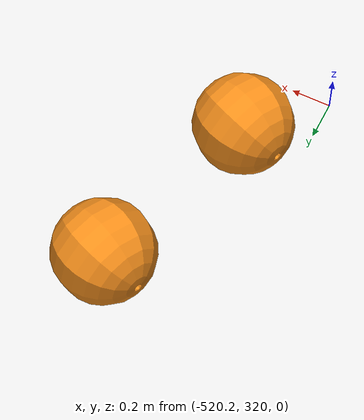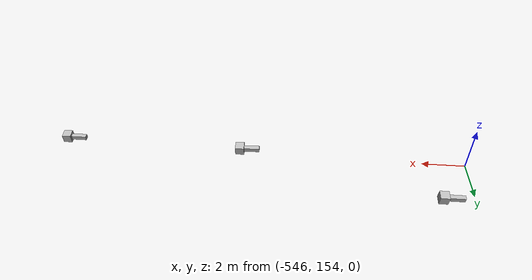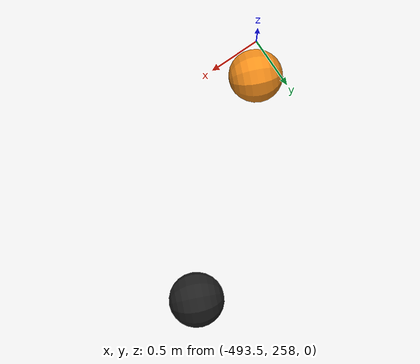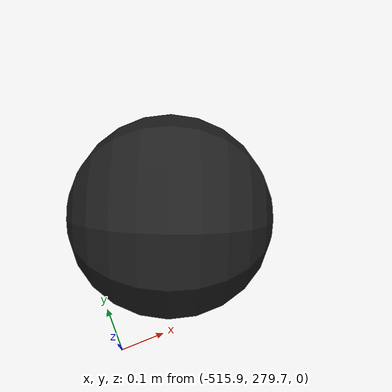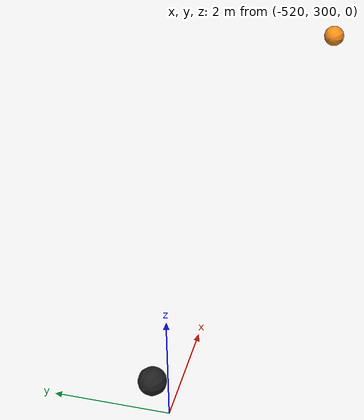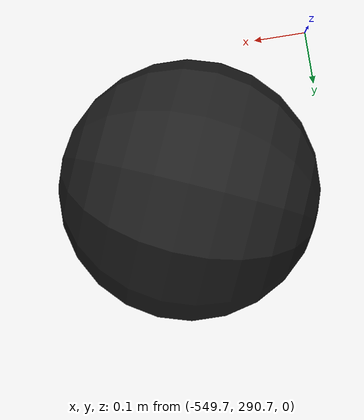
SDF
<sdf version="1.6">
 <world name="robotx_example_course">
  <spherical_coordinates>
   <surface_model>EARTH_WGS84</surface_model>
   <world_frame_orientation>ENU</world_frame_orientation>
   <latitude_deg>-33.724223</latitude_deg>
   <longitude_deg>150.679736</longitude_deg>
   <elevation>0.0</elevation>
   <heading_deg>0.0</heading_deg>
  </spherical_coordinates>
  <include><uri>model://sun</uri></include>
  <include>
   <name>post_0</name>
   <pose>-535.916809 154.362869 0.675884 -0.17182 0.030464 -0.005286</pose>
   <uri>model://post</uri>
  </include>
  <include>
   <name>post_1</name>
   <pose>-527.48999 153.854782 0.425844 -0.1365 0  0</pose>
   <uri>model://post</uri>
  </include>
  <include>
   <name>post_2</name>
   <pose>-544.832825 156.671951 0.499025 -0.162625 0 0</pose>
   <uri>model://post</uri>
  </include>
  <include>
   <name>blue_projectile</name>
   <pose>-545 60 0.03 0 0 0</pose>
   <uri>model://blue_projectile</uri>
  </include>
  <plugin filename="libusv_gazebo_wind_plugin.so" name="wind">
   <wind_obj>
    <name>wamv</name>
    <link_name>wamv/base_link</link_name>
    <coeff_vector>.5 .5 .33</coeff_vector>
   </wind_obj>
   <wind_direction>355</wind_direction>
   <wind_mean_velocity>8.0</wind_mean_velocity>
   <var_wind_gain_constants>5.0</var_wind_gain_constants>
   <var_wind_time_constants>2</var_wind_time_constants>
   <random_seed>19</random_seed>
   <update_rate>10</update_rate>
   <topic_wind_speed>/vrx/debug/wind/speed</topic_wind_speed>
   <topic_wind_direction>/vrx/debug/wind/direction</topic_wind_direction>
  </plugin>
  <scene>
   <sky><clouds><speed>12</speed></clouds></sky>
   <grid>0</grid>
   <origin_visual>0</origin_visual>
   <ambient>0.3 0.3 0.3 1</ambient>
  </scene>
  <include>
   <name>gymkhana_obstacle_course</name>
   <uri>model://obstacle_course2</uri>
   <pose>-530 290 0 0 0 1.17</pose>
  </include>
  <plugin filename="libgymkhana_vrx_scoring_plugin.so" name="gymkhana_scoring_plugin">
   <vehicle>wamv</vehicle>
   <task_name>gymkhana</task_name>
   <task_info_topic>/vrx/task/info</task_info_topic>
   <contact_debug_topic>/vrx/debug/contact</contact_debug_topic>
   <initial_state_duration>10</initial_state_duration>
   <ready_state_duration>10</ready_state_duration>
   <running_state_duration>300</running_state_duration>
   <per_plugin_exit_on_completion>true</per_plugin_exit_on_completion>
   <obstacle_penalty>1</obstacle_penalty>
   <set_position_topic_name>/wamv/sensors/pingers/pinger/set_pinger_position</set_position_topic_name>
   <pinger_position>-533 293 0</pinger_position>
  </plugin>
  <plugin filename="libnavigation_scoring_plugin.so" name="navigation_scoring_plugin">
   <vehicle>wamv</vehicle>
   <task_name>gymkhana_channel</task_name>
   <task_info_topic>/vrx/gymkhana_channel/task/info</task_info_topic>
   <contact_debug_topic>/vrx/gymkhana_channel/debug/contact</contact_debug_topic>
   <per_plugin_exit_on_completion>false</per_plugin_exit_on_completion>
   <initial_state_duration>10</initial_state_duration>
   <ready_state_duration>10</ready_state_duration>
   <running_state_duration>300</running_state_duration>
   <collision_buffer>10</collision_buffer>
   <release_joints>
    <joint><name>wamv_external_pivot_joint</name></joint>
    <joint><name>wamv_external_riser</name></joint>
   </release_joints>
   <course_name>gymkhana_navigation_course</course_name>
   <obstacle_penalty>10.0</obstacle_penalty>
   <gates>
    <gate><left_marker>red_bound_0</left_marker><right_marker>green_bound_0</right_marker></gate>
    <gate><left_marker>red_bound_1</left_marker><right_marker>green_bound_1</right_marker></gate>
    <gate><left_marker>red_bound_2</left_marker><right_marker>green_bound_2</right_marker></gate>
    <gate><left_marker>red_bound_3</left_marker><right_marker>green_bound_3</right_marker></gate>
   </gates>
   <silent>true</silent>
  </plugin>
  <plugin filename="libstationkeeping_scoring_plugin.so" name="stationkeeping_scoring_plugin">
   <vehicle>wamv</vehicle>
   <task_name>gymkhana_blackbox</task_name>
   <mean_error_topic>/vrx/gymkhana_blackbox/mean_pose_error</mean_error_topic>
   <pose_error_topic>/vrx/gymkhana_blackbox/pose_error</pose_error_topic>
   <goal_topic>/vrx/gymkhana_blackbox/goal</goal_topic>
   <task_info_topic>/vrx/gymkhana_blackbox/task/info</task_info_topic>
   <contact_debug_topic>/vrx/gymkhana_blackbox/debug/contact</contact_debug_topic>
   <per_plugin_exit_on_completion>false</per_plugin_exit_on_completion>
   <head_error_on>false</head_error_on>
   <goal_pose_cart>-533 293 0</goal_pose_cart>
   <initial_state_duration>10</initial_state_duration>
   <ready_state_duration>10</ready_state_duration>
   <running_state_duration>300</running_state_duration>
   <release_joints>
    <joint><name>wamv_external_pivot_joint</name></joint>
    <joint><name>wamv_external_riser</name></joint>
   </release_joints>
   <markers><scaling>0.2 0.2 2.0</scaling><height>0.5</height></markers>
   <silent>true</silent>
  </plugin>
 </world>
</sdf>

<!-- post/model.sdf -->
<sdf version="1.6">
  <model name="post">
    <static>true</static>
    <pose>0 0 0 0 0 0</pose>
    <link name="base_link">
      <visual name="visual_1">
        <geometry>
          <box>
            <size>1 0.2 0.2</size>
          </box>
        </geometry>
      </visual>
      <visual name="visual_2">
        <pose>0.4 0 0 0 0 0</pose>
        <geometry>
          <box>
            <size>0.4 0.4 0.4</size>
          </box>
        </geometry>
      </visual>
      <collision name="collision">
        <pose>0 0 0.5 0 0 0</pose>
        <geometry>
          <box>
            <size>1 0.2 1</size>
          </box>
        </geometry>
      </collision>
    </link>
  </model>
</sdf>

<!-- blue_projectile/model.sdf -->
<sdf version="1.6">
  <model name="blue_projectile">
    <link name="link">
      <inertial>
        <mass>0.04</mass>
        <!-- Mark only - based on cylinder -->
        <inertia>
          <ixx>0.00002166</ixx>
          <ixy>0</ixy>
          <ixz>0</ixz>
          <iyy>00002166</iyy>
          <iyz>0</iyz>
          <izz>00002166</izz>
        </inertia>
      </inertial>
      <collision name="collision">
        <geometry>
          <sphere>
            <radius>0.0285</radius>
          </sphere>
        </geometry>
      </collision>
      <visual name="visual">
        <geometry>
	        <sphere>
            <radius>0.0285</radius>
          </sphere>
        </geometry>
        <material>
          <script>
            <uri>model://blue_projectile/materials/scripts/blue_projectile.material</uri>
            <name>blue_projectile/Blue</name>
          </script>
        </material>
      </visual>
    </link>
    <plugin name="BuoyancyPlugin" filename="libbuoyancy_gazebo_plugin.so">
      <wave_model>ocean_waves</wave_model>
      <fluid_density>1000</fluid_density>
      <fluid_level>0.0</fluid_level>
      <linear_drag>25.0</linear_drag>
      <angular_drag>2.0</angular_drag>
      <buoyancy name="buoyancy_sphere">
        <link_name>link</link_name>
        <pose>0 0 -0.02 0 0 0</pose>
        <geometry>
          <sphere>
            <radius>0.0285</radius>
          </sphere>
        </geometry>
      </buoyancy>
    </plugin>
  </model>
</sdf>

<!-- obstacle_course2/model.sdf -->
<!-- automatically generated by the 'generate_avoid_obstacls_buoys' script -->
<!-- python generate_avoid_obstacles_buoys --surmark46104 0 --L 120 -->
<sdf version="1.6">
  <model name="obstacle_course2">
    <include>
      <name>mb_round_buoy_black_0</name>
      <pose>-13.95491156 -25.35449915 0.0 0 0 0 </pose>
      <uri>model://mb_round_buoy_black</uri>
    </include>

    <include>
      <name>mb_round_buoy_black_1</name>
      <pose>7.71587819  37.31995694 0.0 0 0 0 </pose>
      <uri>model://mb_round_buoy_black</uri>
    </include>

    <include>
      <name>mb_round_buoy_black_2</name>
      <pose>-6.69036446  18.26817426 0.0 0 0 0 </pose>
      <uri>model://mb_round_buoy_black</uri>
    </include>

    <include>
      <name>mb_round_buoy_black_3</name>
      <pose> 31.12515658  -8.04971514 0.0 0 0 0 </pose>
      <uri>model://mb_round_buoy_black</uri>
    </include>

    <include>
      <name>mb_round_buoy_black_4</name>
      <pose>-51.65027868  -6.04370199 0.0 0 0 0 </pose>
      <uri>model://mb_round_buoy_black</uri>
    </include>

    <include>
      <name>mb_round_buoy_black_5</name>
      <pose>28.05545934  19.39557671 0.0 0 0 0 </pose>
      <uri>model://mb_round_buoy_black</uri>
    </include>

    <include>
      <name>mb_round_buoy_black_6</name>
      <pose>46.2135293014 -5.59469145311 0.0 0 0 0 </pose>
      <uri>model://mb_round_buoy_black</uri>
    </include>

    <include>
      <name>mb_round_buoy_black_7</name>
      <pose>-23.57401351  -8.88047873 0.0 0 0 0 </pose>
      <uri>model://mb_round_buoy_black</uri>
    </include>

    <include>
      <name>mb_round_buoy_black_8</name>
      <pose>-12.96886565 -47.10898357 0.0 0 0 0 </pose>
      <uri>model://mb_round_buoy_black</uri>
    </include>

    <include>
      <name>mb_round_buoy_black_9</name>
      <pose>13.81544835  -5.73134056 0.0 0 0 0 </pose>
      <uri>model://mb_round_buoy_black</uri>
    </include>
    <include>
      <name>mb_round_buoy_black_10</name>
      <pose>-3.65783836 -17.10255278 0.0 0 0 0 </pose>
      <uri>model://mb_round_buoy_black</uri>
    </include>

    <include>
      <name>mb_round_buoy_black_11</name>
      <pose>41.18085609  24.4716514 0.0 0 0 0 </pose>
      <uri>model://mb_round_buoy_black</uri>
    </include>

    <include>
      <name>mb_round_buoy_orange_0</name>
      <pose>32.80793763   2.60427048 0.0 0 0 0 </pose>
      <uri>model://mb_round_buoy_orange</uri>
    </include>

    <include>
      <name>mb_round_buoy_orange_1</name>
      <pose>-68.93127611 -42.07725144 0.0 0 0 0 </pose>
      <uri>model://mb_round_buoy_orange</uri>
    </include>

    <include>
      <name>mb_round_buoy_orange_2</name>
      <pose> -13.17598349   0.55872345 0.0 0 0 0 </pose>
      <uri>model://mb_round_buoy_orange</uri>
    </include>

    <include>
      <name>mb_round_buoy_orange_3</name>
      <pose>-14.90379316 -46.16465368 0.0 0 0 0 </pose>
      <uri>model://mb_round_buoy_orange</uri>
    </include>

    <include>
      <name>mb_round_buoy_orange_4</name>
      <pose> 17.89343713 -18.0378292 0.0 0 0 0 </pose>
      <uri>model://mb_round_buoy_orange</uri>
    </include>

    <include>
      <name>mb_round_buoy_orange_5</name>
      <pose> 31.84129529   2.48724042 0.0 0 0 0 </pose>
      <uri>model://mb_round_buoy_orange</uri>
    </include>

    <include>
      <name>mb_round_buoy_orange_6</name>
      <pose> 46.90593789 -64.26964395 0.0 0 0 0 </pose>
      <uri>model://mb_round_buoy_orange</uri>
    </include>

  </model>
</sdf>

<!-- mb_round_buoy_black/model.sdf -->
<sdf version="1.6">
  <model name="mb_round_buoy_black">
    <link name="link">
      <inertial>
        <pose>0 0 -2 0 0 0</pose>
        <!-- Mass determined based on buoyancy geometry so object
             floats at mid-point of sphere -->
        <mass>3.5</mass>
        <!-- Mark only - based on cylinder -->
        <inertia>
          <ixx>1.0</ixx>
          <ixy>0</ixy>
          <ixz>0</ixz>
          <iyy>1.0</iyy>
          <iyz>0</iyz>
          <izz>0.1</izz>
        </inertia>
      </inertial>
      <collision name="collision">
        <geometry>
          <sphere>
            <radius>0.25</radius>
          </sphere>
        </geometry>
      </collision>
      <visual name="visual">
        <geometry>
	        <mesh><uri>model://mb_round_buoy_orange/meshes/mb_round_buoy.dae</uri></mesh>
        </geometry>
        <material>
          <script>
            <uri>file://media/materials/scripts/gazebo.material</uri>
            <name>Gazebo/Black</name>
          </script>
        </material>
      </visual>
    </link>
    <plugin name="BuoyancyPlugin" filename="libbuoyancy_gazebo_plugin.so">
      <wave_model>ocean_waves</wave_model>
      <fluid_density>1000</fluid_density>
      <fluid_level>0.0</fluid_level>
      <linear_drag>25.0</linear_drag>
      <angular_drag>2.0</angular_drag>
      <buoyancy name="buoyancy_sphere">
        <link_name>link</link_name>
        <pose>0 0 0.02 0 0 0</pose>
        <geometry>
          <sphere>
            <radius>0.235</radius>
          </sphere>
        </geometry>
      </buoyancy>
    </plugin>
  </model>
</sdf>

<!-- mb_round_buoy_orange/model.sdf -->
<sdf version="1.6">
  <model name="mb_round_buoy_orange">
    <link name="link">
      <inertial>
        <pose>0 0 -2 0 0 0</pose>
        <!-- Mass determined based on buoyancy geometry so object
             floats at mid-point of sphere -->
        <mass>3.5</mass>
        <!-- Mark only - based on cylinder -->
        <inertia>
          <ixx>1.0</ixx>
          <ixy>0</ixy>
          <ixz>0</ixz>
          <iyy>1.0</iyy>
          <iyz>0</iyz>
          <izz>0.1</izz>
        </inertia>
      </inertial>
      <collision name="collision">
        <geometry>
          <sphere>
            <radius>0.25</radius>
          </sphere>
        </geometry>
      </collision>
      <visual name="visual">
        <geometry>
	        <mesh><uri>model://mb_round_buoy_orange/meshes/mb_round_buoy.dae</uri></mesh>
        </geometry>
        <material>
          <script>
            <uri>model://mb_round_buoy_orange/materials/scripts/mb_round_buoy.material</uri>
            <name>mb_round_buoy/Orange</name>
          </script>
        </material>
      </visual>
    </link>
    <plugin name="BuoyancyPlugin" filename="libbuoyancy_gazebo_plugin.so">
      <wave_model>ocean_waves</wave_model>
      <fluid_density>1000</fluid_density>
      <fluid_level>0.0</fluid_level>
      <linear_drag>25.0</linear_drag>
      <angular_drag>2.0</angular_drag>
      <buoyancy name="buoyancy_sphere">
        <link_name>link</link_name>
        <pose>0 0 0.02 0 0 0</pose>
        <geometry>
          <sphere>
            <radius>0.235</radius>
          </sphere>
        </geometry>
      </buoyancy>
    </plugin>
  </model>
</sdf>
